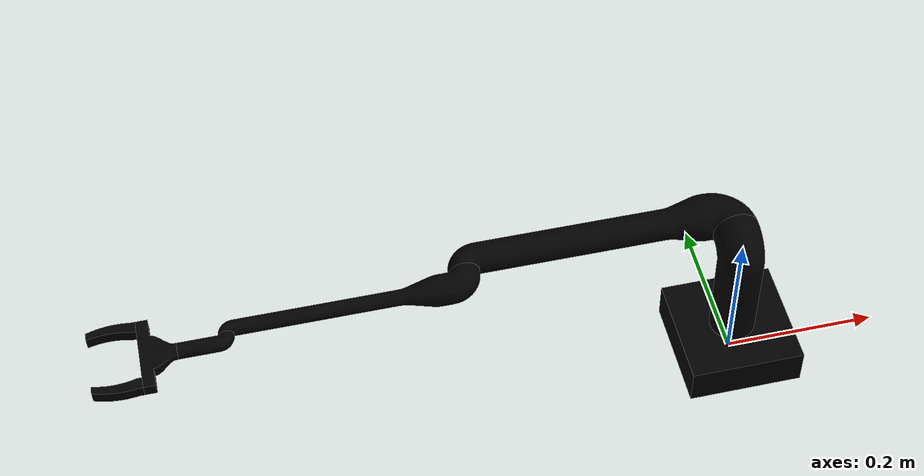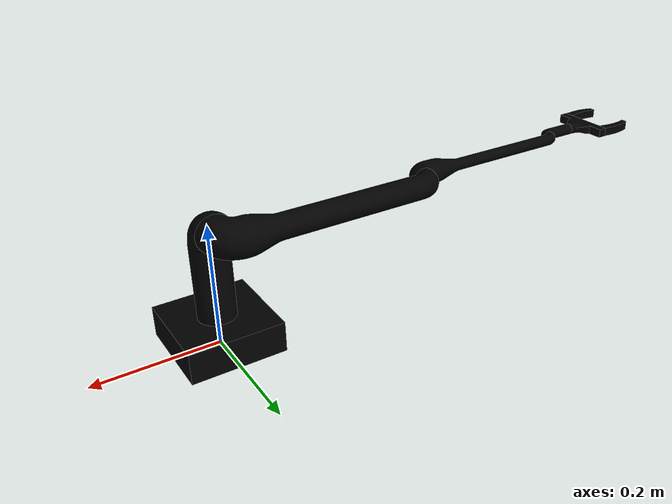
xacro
<?xml version="1.0"?>
<robot xmlns:xacro="http://www.ros.org/wiki/xacro" name="arm_bot">
    <xacro:arg name="initial_positions_file" default="initial_positions.yaml" />

    <!-- Import arm_bot urdf file -->
    <xacro:include filename="$(find arm_bot_description)/urdf/arm_bot.xacro" />

    <!-- Import control_xacro -->
    <xacro:include filename="arm_bot.ros2_control.xacro" />

    <xacro:arm_bot_ros2_control name="FakeSystem" initial_positions_file="$(arg initial_positions_file)"/>

</robot>

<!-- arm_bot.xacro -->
<robot name="arm_bot" xmlns:xacro="http://www.ros.org/wiki/xacro">

<xacro:include filename="$(find arm_bot_description)/urdf/materials.xacro" />
<xacro:include filename="$(find arm_bot_description)/urdf/arm_bot.trans" />
<xacro:include filename="$(find arm_bot_description)/urdf/arm_bot.gazebo" />

<link name = "world">
</link>

<link name="base_link">
  <inertial>
    <origin xyz="0.0 0.0 0.02448438639204284" rpy="0 0 0"/>
    <mass value="8.60929647902388"/>
    <inertia ixx="0.018256" iyy="0.018256" izz="0.033017" ixy="0.0" iyz="-0.0" ixz="-0.0"/>
  </inertial>
  <visual>
    <origin xyz="0 0 0" rpy="0 0 0"/>
    <geometry>
      <mesh filename="file://$(find arm_bot_description)/meshes/base_link.stl" scale="0.001 0.001 0.001"/>
    </geometry>
    <material name="silver"/>
  </visual>
  <collision>
    <origin xyz="0 0 0" rpy="0 0 0"/>
    <geometry>
      <mesh filename="file://$(find arm_bot_description)/meshes/base_link.stl" scale="0.001 0.001 0.001"/>
    </geometry>
  </collision>
</link>

<link name="link_1_1">
  <inertial>
    <origin xyz="0.0 0.001630026838475256 0.08864476549091174" rpy="0 0 0"/>
    <mass value="3.9313270990949905"/>
    <inertia ixx="0.01126" iyy="0.011239" izz="0.00179" ixy="-0.0" iyz="-0.00049" ixz="0.0"/>
  </inertial>
  <visual>
    <origin xyz="-0.0 -0.0 -0.04" rpy="0 0 0"/>
    <geometry>
      <mesh filename="file://$(find arm_bot_description)/meshes/link_1_1.stl" scale="0.001 0.001 0.001"/>
    </geometry>
    <material name="silver"/>
  </visual>
  <collision>
    <origin xyz="-0.0 -0.0 -0.04" rpy="0 0 0"/>
    <geometry>
      <mesh filename="file://$(find arm_bot_description)/meshes/link_1_1.stl" scale="0.001 0.001 0.001"/>
    </geometry>
  </collision>
</link>

<link name="link_2_1">
  <inertial>
    <origin xyz="-0.1419912947970735 0.02835603992558939 0.0" rpy="0 0 0"/>
    <mass value="4.667984277446197"/>
    <inertia ixx="0.001356" iyy="0.062832" izz="0.062855" ixy="0.000675" iyz="0.0" ixz="-0.0"/>
  </inertial>
  <visual>
    <origin xyz="-0.0 -0.03 -0.2" rpy="0 0 0"/>
    <geometry>
      <mesh filename="file://$(find arm_bot_description)/meshes/link_2_1.stl" scale="0.001 0.001 0.001"/>
    </geometry>
    <material name="silver"/>
  </visual>
  <collision>
    <origin xyz="-0.0 -0.03 -0.2" rpy="0 0 0"/>
    <geometry>
      <mesh filename="file://$(find arm_bot_description)/meshes/link_2_1.stl" scale="0.001 0.001 0.001"/>
    </geometry>
  </collision>
</link>

<link name="link_3_1">
  <inertial>
    <origin xyz="-0.09848058215343625 -0.01908241714843465 0.0" rpy="0 0 0"/>
    <mass value="1.2932869245697551"/>
    <inertia ixx="0.000163" iyy="0.011569" izz="0.011572" ixy="-0.000145" iyz="-0.0" ixz="0.0"/>
  </inertial>
  <visual>
    <origin xyz="0.35 -0.04 -0.2" rpy="0 0 0"/>
    <geometry>
      <mesh filename="file://$(find arm_bot_description)/meshes/link_3_1.stl" scale="0.001 0.001 0.001"/>
    </geometry>
    <material name="silver"/>
  </visual>
  <collision>
    <origin xyz="0.35 -0.04 -0.2" rpy="0 0 0"/>
    <geometry>
      <mesh filename="file://$(find arm_bot_description)/meshes/link_3_1.stl" scale="0.001 0.001 0.001"/>
    </geometry>
  </collision>
</link>

<link name="link_4_1">
  <inertial>
    <origin xyz="-0.02712121246875976 -0.009511784704866407 0.0" rpy="0 0 0"/>
    <mass value="0.16204570892767498"/>
    <inertia ixx="8e-06" iyy="6.3e-05" izz="6.3e-05" ixy="-2e-06" iyz="-0.0" ixz="0.0"/>
  </inertial>
  <visual>
    <origin xyz="0.65 -0.01 -0.2" rpy="0 0 0"/>
    <geometry>
      <mesh filename="file://$(find arm_bot_description)/meshes/link_4_1.stl" scale="0.001 0.001 0.001"/>
    </geometry>
    <material name="silver"/>
  </visual>
  <collision>
    <origin xyz="0.65 -0.01 -0.2" rpy="0 0 0"/>
    <geometry>
      <mesh filename="file://$(find arm_bot_description)/meshes/link_4_1.stl" scale="0.001 0.001 0.001"/>
    </geometry>
  </collision>
</link>

<link name="link_5_1">
  <inertial>
    <origin xyz="-0.029386532104826557 -1.7030590707957295e-05 2.9630374862865683e-06" rpy="0 0 0"/>
    <mass value="0.2977268365845034"/>
    <inertia ixx="0.000167" iyy="4.6e-05" izz="0.000202" ixy="0.0" iyz="0.0" ixz="-0.0"/>
  </inertial>
  <visual>
    <origin xyz="0.71 -0.0 -0.2" rpy="0 0 0"/>
    <geometry>
      <mesh filename="file://$(find arm_bot_description)/meshes/link_5_1.stl" scale="0.001 0.001 0.001"/>
    </geometry>
    <material name="silver"/>
  </visual>
  <collision>
    <origin xyz="0.71 -0.0 -0.2" rpy="0 0 0"/>
    <geometry>
      <mesh filename="file://$(find arm_bot_description)/meshes/link_5_1.stl" scale="0.001 0.001 0.001"/>
    </geometry>
  </collision>
</link>

<link name="jaw_1_1">
  <inertial>
    <origin xyz="-0.027876065035520092 -0.0064183792856905425 -0.007499999999999896" rpy="0 0 0"/>
    <mass value="0.08907498028891245"/>
    <inertia ixx="3e-06" iyy="2.8e-05" izz="2.8e-05" ixy="-0.0" iyz="-0.0" ixz="-0.0"/>
  </inertial>
  <visual>
    <origin xyz="0.755 -0.05 -0.2075" rpy="0 0 0"/>
    <geometry>
      <mesh filename="file://$(find arm_bot_description)/meshes/jaw_1_1.stl" scale="0.001 0.001 0.001"/>
    </geometry>
    <material name="silver"/>
  </visual>
  <collision>
    <origin xyz="0.755 -0.05 -0.2075" rpy="0 0 0"/>
    <geometry>
      <mesh filename="file://$(find arm_bot_description)/meshes/jaw_1_1.stl" scale="0.001 0.001 0.001"/>
    </geometry>
  </collision>
</link>

<link name="jaw_2_1">
  <inertial>
    <origin xyz="-0.027876065035519537 0.006418379285690584 -0.007500000000000034" rpy="0 0 0"/>
    <mass value="0.08907498028891239"/>
    <inertia ixx="3e-06" iyy="2.8e-05" izz="2.8e-05" ixy="0.0" iyz="0.0" ixz="0.0"/>
  </inertial>
  <visual>
    <origin xyz="0.755 0.05 -0.2075" rpy="0 0 0"/>
    <geometry>
      <mesh filename="file://$(find arm_bot_description)/meshes/jaw_2_1.stl" scale="0.001 0.001 0.001"/>
    </geometry>
    <material name="silver"/>
  </visual>
  <collision>
    <origin xyz="0.755 0.05 -0.2075" rpy="0 0 0"/>
    <geometry>
      <mesh filename="file://$(find arm_bot_description)/meshes/jaw_2_1.stl" scale="0.001 0.001 0.001"/>
    </geometry>
  </collision>
</link>

<joint name="world_to_base_link" type="fixed">
  <origin xyz="0.0 0.0 0.0" rpy="0 0 0"/>
  <parent link="world"/>
  <child link="base_link"/>
  <axis xyz="0.0 0.0 0.0"/>
</joint>

<joint name="Revolute_9" type="continuous">
  <origin xyz="0.0 0.0 0.04" rpy="0 0 0"/>
  <parent link="base_link"/>
  <child link="link_1_1"/>
  <axis xyz="0.0 0.0 1.0"/>
</joint>

<joint name="Revolute_10" type="continuous">
  <origin xyz="0.0 0.03 0.16" rpy="0 0 0"/>
  <parent link="link_1_1"/>
  <child link="link_2_1"/>
  <axis xyz="0.0 1.0 0.0"/>
</joint>

<joint name="Revolute_11" type="continuous">
  <origin xyz="-0.35 0.01 0.0" rpy="0 0 0"/>
  <parent link="link_2_1"/>
  <child link="link_3_1"/>
  <axis xyz="0.0 -1.0 0.0"/>
</joint>

<joint name="Revolute_12" type="continuous">
  <origin xyz="-0.3 -0.03 0.0" rpy="0 0 0"/>
  <parent link="link_3_1"/>
  <child link="link_4_1"/>
  <axis xyz="0.0 -1.0 0.0"/>
</joint>

<joint name="Revolute_13" type="continuous">
  <origin xyz="-0.06 -0.01 0.0" rpy="0 0 0"/>
  <parent link="link_4_1"/>
  <child link="link_5_1"/>
  <axis xyz="-1.0 0.0 0.0"/>
</joint>

<joint name="Slider_14" type="prismatic">
  <origin xyz="-0.045 0.05 0.0075" rpy="0 0 0"/>
  <parent link="link_5_1"/>
  <child link="jaw_1_1"/>
  <axis xyz="0.0 -1.0 0.0"/>
  <limit upper="0.0" lower="0.0" effort="100" velocity="100"/>
</joint>

<joint name="Slider_15" type="prismatic">
  <origin xyz="-0.045 -0.05 0.0075" rpy="0 0 0"/>
  <parent link="link_5_1"/>
  <child link="jaw_2_1"/>
  <axis xyz="0.0 -1.0 0.0"/>
  <limit upper="0.0" lower="0.0" effort="100" velocity="100"/>
</joint>

</robot>

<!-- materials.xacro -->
<robot name="arm_bot" xmlns:xacro="http://www.ros.org/wiki/xacro" >

<material name="silver">
  <color rgba="0 0 0 0"/>
</material>

</robot>

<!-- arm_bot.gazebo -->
<robot name="arm_bot" xmlns:xacro="http://www.ros.org/wiki/xacro" >

<xacro:property name="body_color" value="Gazebo/Silver" />

<!-- Include the transmission file -->
<xacro:include filename="$(find arm_bot_description)/urdf/arm_bot.trans"/>

<gazebo>
  <plugin name="gazebo_ros2_control" filename="libgazebo_ros2_control.so">
    <robot_namespace>/</robot_namespace>
    <robot_sim_type>gazebo_ros2_control/GazeboSystem</robot_sim_type>
    <legacy_mode>1</legacy_mode>
    <control_period>0.01</control_period>
    <parameters>$(find arm_bot_description)/config/arm_bot_control.yaml</parameters>
  </plugin>
</gazebo>

<gazebo>
  <plugin name="joint_controller_plugin" filename="libjoint_controller_plugin.so"/>
</gazebo>

<gazebo reference="base_link">
  <material>Gazebo/Silver</material>
  <mu1>0.2</mu1>
  <mu2>0.2</mu2>
  <self_collide>true</self_collide>
  <gravity>true</gravity>
</gazebo>

<gazebo reference="link_1_1">
  <material>${body_color}</material>
  <mu1>0.2</mu1>
  <mu2>0.2</mu2>
  <self_collide>true</self_collide>
</gazebo>

<gazebo reference="link_2_1">
  <material>${body_color}</material>
  <mu1>0.2</mu1>
  <mu2>0.2</mu2>
  <self_collide>true</self_collide>
</gazebo>

<gazebo reference="link_3_1">
  <material>${body_color}</material>
  <mu1>0.2</mu1>
  <mu2>0.2</mu2>
  <self_collide>true</self_collide>
</gazebo>

<gazebo reference="link_4_1">
  <material>${body_color}</material>
  <mu1>0.2</mu1>
  <mu2>0.2</mu2>
  <self_collide>true</self_collide>
</gazebo>

<gazebo reference="link_5_1">
  <material>${body_color}</material>
  <mu1>0.2</mu1>
  <mu2>0.2</mu2>
  <self_collide>true</self_collide>
</gazebo>

<gazebo reference="jaw_1_1">
  <material>${body_color}</material>
  <mu1>0.2</mu1>
  <mu2>0.2</mu2>
  <self_collide>true</self_collide>
</gazebo>

<gazebo reference="jaw_2_1">
  <material>${body_color}</material>
  <mu1>0.2</mu1>
  <mu2>0.2</mu2>
  <self_collide>true</self_collide>
</gazebo>

</robot>
